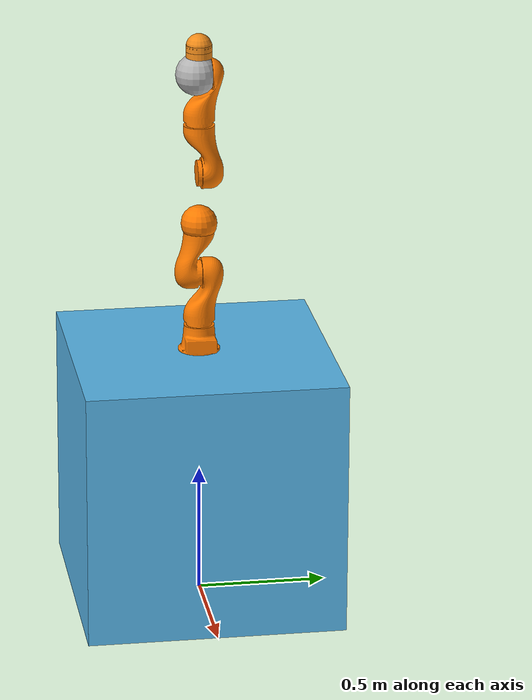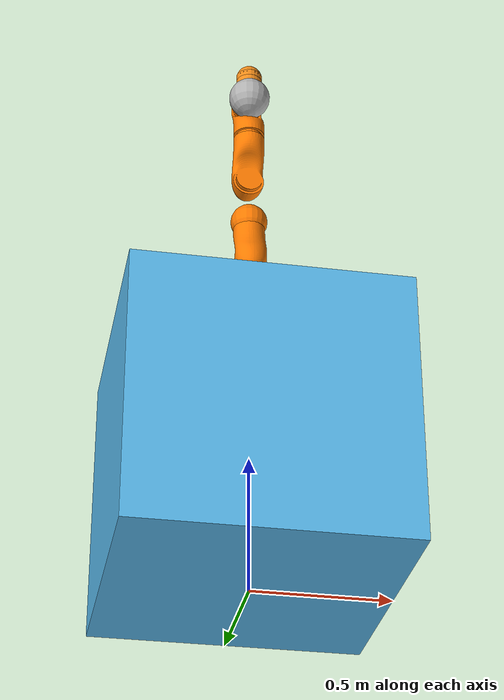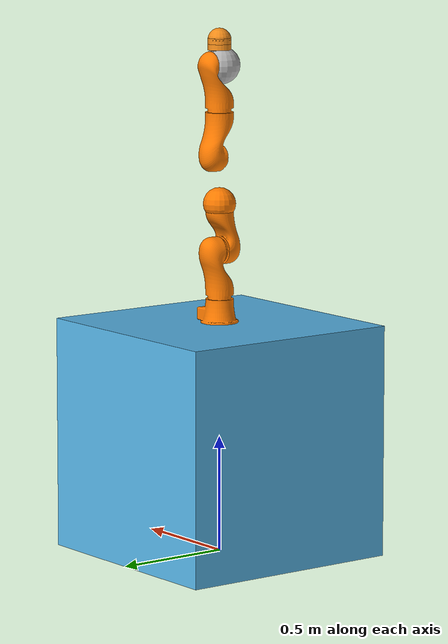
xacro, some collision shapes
<?xml version="1.0"?>
<robot xmlns:xacro="http://www.ros.org/wiki/xacro" name="single_lwr_robot">

	<!-- Include all models -->
	<xacro:include filename="$(find lwr_description)/model/kuka_lwr.urdf.xacro"/>
	<xacro:include filename="$(find end_effector)/urdf/end_effector.urdf.xacro" />
	<!-- and assemble your robot -->
	<link name="world"/>

	<joint name="fixed_w" type="fixed">
      <parent link="world"/>
      <child link="box"/>
    </joint>

	<link name="box">
		<inertial>
			<mass value="5.0"/>
			<origin rpy="0 0 0" xyz="0 0 0"/>
			<inertia ixx="0.01"
             iyy="0.01"
             izz="0.01"
             ixy="0" iyz="0" ixz="0"/>
		</inertial>
		<visual>
			<origin xyz="0 0 0.50" rpy="0 0 0"/>
			<geometry>
				<box size="1.0 1.0 1.0"/>
			</geometry>
		</visual>
		<collision>
			<origin xyz="0 0 0.50" rpy="0 0 0"/>
			<geometry>
				<box size="1.0 1.0 1.0"/>
			</geometry>
		</collision>
	</link>

>

	<!-- using the models -->
	<xacro:kuka_lwr parent="box" name="lwr">
		<origin xyz="0 0 1" rpy="0 0 0"/>
	</xacro:kuka_lwr>

	<xacro:end_effector_kuka_lwr parent="lwr_7_link" name="lwr">
		<origin xyz="0 0 0" rpy="0 0 0"/>
	</xacro:end_effector_kuka_lwr>

	<joint name="fixed_ef" type="fixed">
		<origin xyz="0 0 0.0875" rpy="0 0 0"/>
      <parent link="lwr_7_link"/>
      <child link="ef"/>
    </joint>

	<link name="ef">
		<inertial>
			<mass value="0.001"/>
			<origin rpy="0 0 0" xyz="0 0 0"/>
			<inertia ixx="0.001"
             iyy="0.001"
             izz="0.001"
             ixy="0" iyz="0" ixz="0"/>
		</inertial>
	</link>

</robot>

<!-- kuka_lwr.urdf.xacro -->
<robot name="kuka_lwr" xmlns:xacro="http://www.ros.org/wiki/xacro">

	<!-- utils /-->
	<xacro:include filename="$(find lwr_description)/model/utils.xacro"/>
	<xacro:include filename="$(find lwr_description)/model/kuka_materials.xacro"
	/>

	<!-- gazebo and transmission models /-->
	<xacro:include filename="$(find lwr_description)/model/kuka_lwr.gazebo.xacro"/>
	<xacro:include filename="$(find lwr_description)/model/kuka_lwr.transmission.xacro"/>

	<!-- properties /-->
	<xacro:property name="base_mass" value="2.0"/>
	<xacro:property name="link_mass" value="2.35"/>
    <xacro:property name="wrist_mass" value="1.1"/>
    <xacro:property name="tip_mass" value="0.25"/>
	<xacro:property name="velocity_scale" value="1"/>
	<xacro:property name="effort_scale" value="1"/>

	<xacro:property name="max_stiffness" value="5000"/>
	<xacro:property name="min_stiffness" value="0"/>
	<xacro:property name="rate_stiffness" value="20000"/> <!-- reflex to stiffness -->

	<!-- URDF model /-->
	<xacro:macro name="kuka_lwr" params="parent name *origin">

		<!-- First (shoulder) element of the arm. Fixed to its parent. -->
		<joint name="${parent}_${name}_base_joint" type="fixed">
			<xacro:insert_block name="origin"/>
			<origin xyz="0 0 0" rpy="0 0 0"/>
			<parent link="${parent}"/>
			<child link="${name}_base_link"/>
		</joint>

		<link name="${name}_base_link">
			<inertial>
				<mass value="${base_mass}"/>
				<origin xyz="0 0 0.055"  />
				<cylinder_inertia_def radius="0.06" length="0.11" mass="${base_mass}"/>
			</inertial>
			<visual>
				<origin xyz="0 0 0" rpy="0 0 ${M_PI}"/>
				<geometry>
					<mesh filename="package://lwr_description/meshes/lwr4plus/visual/base.STL"/>
				</geometry>
				<material name="Kuka/Orange"/>
			</visual>
			<collision>
				<origin xyz="0 0 0.055" rpy="0 0 ${M_PI}"/>
				<geometry>
					<cylinder radius="0.07" length="0.11"/>
				</geometry>
			</collision>
		</link>

		<!-- Second segment of the arm. Joint along z-axis -->
		<joint name="${name}_a1_joint" type="revolute">
			<origin xyz="0 0 0.11" rpy="0 0 0"/>
			<axis xyz="0 0 1"/>
			<limit lower="${-170 * M_PI / 180}" upper="${170 * M_PI / 180}" effort="176" velocity="${velocity_scale * 110 * M_PI / 180}" />
			<dynamics friction="10.0" damping="1.0"/>
			<parent link="${name}_base_link"/>
			<child link="${name}_1_link"/>
		</joint>

		<joint name="${name}_a1_joint_stiffness" type="revolute">
			<axis xyz="0 0 1"/>
			<limit lower="${min_stiffness}" upper="${max_stiffness}" effort="0" velocity="${rate_stiffness}" />
			<safety_controller soft_lower_limit="${min_stiffness}" soft_upper_limit="${max_stiffness}" k_position="30" k_velocity="30"/>
			<parent link="${name}_base_link"/>
			<child link="${name}_1_link_dummy"/>
		</joint>
		<link name="${name}_1_link_dummy"/>

		<link name="${name}_1_link">
			<inertial>
				<mass value="${link_mass}"/>
				<origin rpy="0 0 0" xyz="0 -0.06 0.130"/>
				<cuboid_inertia_def length="0.12" width="0.06" height="0.260" mass="${link_mass}"/>
			</inertial>
			<visual>
				<origin xyz="0 0 -0.008" rpy="0 0 ${M_PI}"/>
				<geometry>
					<mesh filename="package://lwr_description/meshes/lwr4plus/visual/link_1.STL"/>
				</geometry>
				<material name="Kuka/Orange"/>
			</visual>
			<collision>
				<origin xyz="0 0 0.0" rpy="0 0 0"/>
				<geometry>
					<sphere radius="0.07"/>
				</geometry>
			</collision>
			<collision>
				<origin xyz="0 0.06 0.2" rpy="0 0 0"/>
				<geometry>
					<sphere radius="0.07"/>
				</geometry>
			</collision>
			<collision>
				<origin xyz="0 0.03 0.1" rpy="-0.291 0 0"/>
				<geometry>
					<cylinder radius="0.07" length="0.208"/>
				</geometry>
			</collision>
		</link>

		<!-- Third segment of the arm. Joint along y-axis -->
		<joint name="${name}_a2_joint" type="revolute">
			<origin xyz="0 0 0.2005" rpy="0 0 0"/>
			<axis xyz="0 -1 0"/>
			<limit lower="${-120 * M_PI / 180}" upper="${120 * M_PI / 180}" effort="176" velocity="${velocity_scale * 110 * M_PI / 180}" />
			<dynamics friction="10.0" damping="1.0"/>
			<parent link="${name}_1_link"/>
			<child link="${name}_2_link"/>
		</joint>

		<joint name="${name}_a2_joint_stiffness" type="revolute">
			<axis xyz="0 0 1"/>
			<limit lower="${min_stiffness}" upper="${max_stiffness}" effort="0" velocity="${rate_stiffness}" />
			<safety_controller soft_lower_limit="${min_stiffness}" soft_upper_limit="${max_stiffness}" k_position="30" k_velocity="30"/>
			<parent link="${name}_1_link"/>
			<child link="${name}_2_link_dummy"/>
		</joint>
		<link name="${name}_2_link_dummy"/>

		<link name="${name}_2_link">
			<inertial>
				<mass value="${link_mass}"/>
				<origin rpy="0 0 0" xyz="0 0.06 ${0.130 - 0.06}"/>
				<cuboid_inertia_def length="0.12" width="0.06" height="0.260" mass="${link_mass}"/>
			</inertial>

			<visual>
				<origin xyz="0 0 0.0" rpy="0 0 ${M_PI}"/>
				<geometry>
					<mesh filename="package://lwr_description/meshes/lwr4plus/visual/link_2.STL"/>
				</geometry>
				<material name="Kuka/Orange"/>
			</visual>
			<collision>
				<origin xyz="0 0 0.2" rpy="0 0 0"/>
				<geometry>
					<sphere radius="0.07"/>
				</geometry>
			</collision>
			<collision>
				<origin xyz="0 -0.06 0.0" rpy="0 0 0"/>
				<geometry>
					<sphere radius="0.07"/>
				</geometry>
			</collision>
			<collision>
				<origin xyz="0 -0.03 0.1" rpy="-0.291 0 0"/>
				<geometry>
					<cylinder radius="0.07" length="0.208"/>
				</geometry>
			</collision>
		</link>

		<!-- Fourth element of the arm. z-axis -->
		<joint name="${name}_e1_joint" type="revolute">
			<origin xyz="0 0 0.20" rpy="0 0 0"/>
			<axis xyz="0 0 1"/>
			<limit lower="${-170 * M_PI / 180}" upper="${170 * M_PI / 180}" effort="100" velocity="${velocity_scale * 128 * M_PI / 180}" />
			<dynamics friction="10.0" damping="1.0"/>
			<parent link="${name}_2_link"/>
			<child link="${name}_3_link"/>
		</joint>

		<joint name="${name}_e1_joint_stiffness" type="revolute">
			<axis xyz="0 0 1"/>
			<limit lower="${min_stiffness}" upper="${max_stiffness}" effort="0" velocity="${rate_stiffness}" />
			<safety_controller soft_lower_limit="${min_stiffness}" soft_upper_limit="${max_stiffness}" k_position="30" k_velocity="30"/>
			<parent link="${name}_2_link"/>
			<child link="${name}_3_link_dummy"/>
		</joint>
		<link name="${name}_3_link_dummy"/>

		<link name="${name}_3_link">
			<inertial>
				<mass value="${link_mass}"/>
				<origin rpy="0 0 0" xyz="0 0.06 0.130"/>
				<cuboid_inertia_def length="0.12" width="0.06" height="0.260" mass="${link_mass}"/>
			</inertial>

			<visual>
				<origin xyz="0 0 -0.008" rpy="0 0 ${M_PI}"/>
				<geometry>
					<mesh filename="package://lwr_description/meshes/lwr4plus/visual/link_3.STL"/>
				</geometry>
				<material name="Kuka/Orange"/>
			</visual>
			<collision>
				<origin xyz="0 0 0.0" rpy="0 0 0"/>
				<geometry>
					<sphere radius="0.07"/>
				</geometry>
			</collision>
			<collision>
				<origin xyz="0 -0.06 0.2" rpy="0 0 0"/>
				<geometry>
					<sphere radius="0.07"/>
				</geometry>
			</collision>
			<collision>
				<origin xyz="0 -0.03 0.1" rpy="0.291 0 0"/>
				<geometry>
					<cylinder radius="0.07" length="0.208"/>
				</geometry>
			</collision>
		</link>

		<!-- fifth element of the arm. x-axis -->
		<joint name="${name}_a3_joint" type="revolute">
			<origin xyz="0 0 0.20" rpy="0 0 0"/>
			<axis xyz="0 1 0"/>
			<limit lower="${-120 * M_PI / 180}" upper="${120 * M_PI / 180}" effort="100" velocity="${velocity_scale * 128 * M_PI / 180}" />
			<dynamics friction="10.0" damping="1.0"/>
			<parent link="${name}_3_link"/>
			<child link="${name}_4_link"/>
		</joint>

		<joint name="${name}_a3_joint_stiffness" type="revolute">
			<axis xyz="0 0 1"/>
			<limit lower="${min_stiffness}" upper="${max_stiffness}" effort="0" velocity="${rate_stiffness}" />
			<safety_controller soft_lower_limit="${min_stiffness}" soft_upper_limit="${max_stiffness}" k_position="30" k_velocity="30"/>
			<parent link="${name}_3_link"/>
			<child link="${name}_4_link_dummy"/>
		</joint>
		<link name="${name}_4_link_dummy"/>

		<link name="${name}_4_link">
			<inertial>
				<mass value="${link_mass}"/>
				<origin rpy="0 0 0" xyz="0 -0.06 ${0.130 - 0.06}"/>
				<cuboid_inertia_def length="0.12" width="0.06" height="0.2600" mass="${link_mass}"/>
			</inertial>

			<visual>
				<origin xyz="0 0 0.0" rpy="0 0 ${M_PI}"/>
				<geometry>
					<mesh filename="package://lwr_description/meshes/lwr4plus/visual/link_4.STL"/>
				</geometry>
				<material name="Kuka/Orange"/>
			</visual>
			<collision>
			<origin xyz="0 0 0.2" rpy="0 0 0"/>
			<geometry>
				<sphere radius="0.07"/>
			</geometry>
			</collision>
			<collision>
				<origin xyz="0 0.06 0.0" rpy="0 0 0"/>
				<geometry>
					<sphere radius="0.07"/>
				</geometry>
			</collision>
			<collision>
				<origin xyz="0 0.03 0.1" rpy="0.291 0 0"/>
				<geometry>
					<cylinder radius="0.07" length="0.208"/>
				</geometry>
			</collision>
		</link>

		<!-- Sixth element of the arm. z-axis -->
		<joint name="${name}_a4_joint" type="revolute">
			<origin xyz="0 0 0.20" rpy="0 0 0"/>
			<axis xyz="0 0 1"/>
			<limit lower="${-170 * M_PI / 180}" upper="${170 * M_PI / 180}" effort="100" velocity="${velocity_scale * 204 * M_PI / 180}" />
			<dynamics friction="10.0" damping="1.0"/>
			<parent link="${name}_4_link"/>
			<child link="${name}_5_link"/>
		</joint>

		<joint name="${name}_a4_joint_stiffness" type="revolute">
			<axis xyz="0 0 1"/>
			<limit lower="${min_stiffness}" upper="${max_stiffness}" effort="0" velocity="${rate_stiffness}" />
			<safety_controller soft_lower_limit="${min_stiffness}" soft_upper_limit="${max_stiffness}" k_position="30" k_velocity="30"/>
			<parent link="${name}_4_link"/>
			<child link="${name}_5_link_dummy"/>
		</joint>
		<link name="${name}_5_link_dummy"/>

		<link name="${name}_5_link">
			<inertial>
				<mass value="${link_mass}"/>
				<origin rpy="0 0 0" xyz="0 0 0.124"/>
				<cuboid_inertia_def length="0.12" width="0.06" height="0.248" mass="${link_mass}"/>
			</inertial>

			<visual>
				<origin xyz="0 0 -0.008" rpy="0 0 ${M_PI}"/>
				<geometry name="${name}_5_geom">
					<mesh filename="package://lwr_description/meshes/lwr4plus/visual/link_5.STL"/>
				</geometry>
				<material name="Kuka/Orange"/>
			</visual>

			<collision>
				<origin xyz="0 0 0.0" rpy="0 0 0"/>
				<geometry>
					<sphere radius="0.07"/>
				</geometry>
			</collision>
			<collision>
				<origin xyz="0 0.04 0.19" rpy="0 0 0"/>
				<geometry>
					<sphere radius="0.07"/>
				</geometry>
			</collision>
			<collision>
				<origin xyz="0 0.02 0.095" rpy="-0.207 0 0"/>
				<geometry>
					<cylinder radius="0.07" length="0.198"/>
				</geometry>
			</collision>
		</link>

		<!-- Seventh element of the arm. z-axis -->
		<joint name="${name}_a5_joint" type="revolute">
			<origin xyz="0 0 0.19" rpy="0 0 0"/>
			<axis xyz="0 -1 0"/>
			<limit lower="${-120 * M_PI / 180}" upper="${120 * M_PI / 180}" effort="38" velocity="${velocity_scale * 184 * M_PI / 180}" />
			<dynamics friction="10.0" damping="1.0"/>
			<parent link="${name}_5_link"/>
			<child link="${name}_6_link"/>
		</joint>

		<joint name="${name}_a5_joint_stiffness" type="revolute">
			<axis xyz="0 0 1"/>
			<limit lower="${min_stiffness}" upper="${max_stiffness}" effort="0" velocity="${rate_stiffness}" />
			<safety_controller soft_lower_limit="${min_stiffness}" soft_upper_limit="${max_stiffness}" k_position="30" k_velocity="30"/>
			<parent link="${name}_5_link"/>
			<child link="${name}_6_link_dummy"/>
		</joint>
		<link name="${name}_6_link_dummy"/>

		<link name="${name}_6_link">
			<inertial>
				<mass value="${wrist_mass}"/>
				<origin rpy="0 0 0" xyz="0 0 0.0625"/>
				<cuboid_inertia_def length="0.125" width="0.125" height="0.125" mass="${wrist_mass}"/>
			</inertial>

			<visual>
				<origin xyz="0 0 0" rpy="0 0 ${M_PI}"/>
				<geometry>
					<mesh filename="package://lwr_description/meshes/lwr4plus/visual/link_6.STL"/>
				</geometry>
			<material name="Kuka/Grey"/>
			</visual>
			<collision>
			<origin xyz="0 -0.01 0" rpy="0 0 ${M_PI}"/>
			<geometry>
				<sphere radius="0.08"/>
			</geometry>
			</collision>
		</link>

		<!-- Eighth element of the arm. z-axis -->
		<joint name="${name}_a6_joint" type="revolute">
			<origin xyz="0 0 0.078" rpy="0 0 0"/>
			<axis xyz="0 0 1"/>
			<limit lower="${-170 * M_PI / 180}" upper="${170 * M_PI / 180}" effort="38" velocity="${velocity_scale * 184 * M_PI / 180}" />
			<dynamics friction="10.0" damping="1.0"/>
			<parent link="${name}_6_link"/>
			<child link="${name}_7_link"/>
		</joint>

		<joint name="${name}_a6_joint_stiffness" type="revolute">
			<axis xyz="0 0 1"/>
			<limit lower="${min_stiffness}" upper="${max_stiffness}" effort="0" velocity="${rate_stiffness}" />
			<safety_controller soft_lower_limit="${min_stiffness}" soft_upper_limit="${max_stiffness}" k_position="30" k_velocity="30"/>
			<parent link="${name}_6_link"/>
			<child link="${name}_7_link_dummy"/>
		</joint>
		<link name="${name}_7_link_dummy"/>

		<link name="${name}_7_link">
			<inertial>
				<mass value="${tip_mass}"/>
				<origin xyz="0 0 0"/>
				<cuboid_inertia_def length="0.1" width="0.1" height="0.1" mass="${tip_mass}"/>
			</inertial>
			<visual>
				<origin xyz="0 0 0" rpy="0 0 ${M_PI}"/>
				<geometry>
					<mesh filename="package://lwr_description/meshes/lwr4plus/visual/link_7.STL"/>
				</geometry>
			<material name="Kuka/DarkGrey"/>
			</visual>

			<collision>
			<origin xyz="0 0 0" rpy="0 0 ${M_PI}"/>
			<geometry>
				<cylinder radius="0.04" length="0.05"/>
			</geometry>
			</collision>
		</link>

		<xacro:kuka_lwr_gazebo name="${name}"/>
		<xacro:kuka_lwr_transmission name="${name}"/>

	</xacro:macro>

</robot>

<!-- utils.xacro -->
<robot xmlns:xacro="http://www.ros.org/wiki/xacro">

  <xacro:property name="M_PI" value="3.1415926535897931"/>

  <!-- Little helper macro to define the inertia matrix needed for links. -->
  <xacro:macro name="cuboid_inertia_def" params="width height length mass">
    <inertia ixx="${mass * (height * height + length * length) / 12}"
             iyy="${mass * (width * width + length * length) / 12}"
             izz="${mass * (width * width + height * height) / 12}"
             ixy="0" iyz="0" ixz="0"/>
  </xacro:macro>

  <!-- length is along the y-axis! -->
  <xacro:macro name="cylinder_inertia_def" params="radius length mass">
    <inertia ixx="${mass * (3 * radius * radius + length * length) / 12}"
             iyy="${mass * radius* radius / 2}"
             izz="${mass * (3 * radius * radius + length * length) / 12}"
             ixy="0" iyz="0" ixz="0"/>
  </xacro:macro>

</robot>

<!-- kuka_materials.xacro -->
<robot xmlns:xacro="http://www.ros.org/wiki/xacro">
  <material name="Kuka/DarkGrey">
    <color rgba="0.3 0.3 0.3 1.0"/>
  </material>

  <material name="Kuka/LightGrey">
    <color rgba="0.8 0.8 0.8 1.0"/>
  </material>

  <material name="Kuka/Red">
    <color rgba="0.3 0.3 0.3 1.0"/>
  </material>

  <material name="Kuka/Black">
    <color rgba="0 0 0 1.0"/>
  </material>

  <material name="Kuka/Orange">
    <color rgba="1.0 0.487 0 1.0"/>
  </material>

  <material name="Kuka/Silver">
    <color rgba="1.0 1.0 1.0 1.0"/>
  </material>

  <material name="Kuka/Grey">
    <color rgba="0.7 0.7 0.7 1.0"/>
  </material>

  <material name="Kuka/Blue">
    <color rgba="0.0 0.0 0.8 1.0"/>
  </material>

</robot>

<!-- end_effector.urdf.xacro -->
<robot xmlns:xacro="http://www.ros.org/wiki/xacro" name="end_effector">

  <!-- Constants for robot dimensions -->
  <xacro:property name="PI" value="3.1415926535897931"/>
  <xacro:property name="mass" value="0.001" /> <!-- arbitrary value for mass -->
  <xacro:property name="width" value="0.25" />
  <xacro:property name="height" value="0.5" />
  <xacro:property name="length" value="0.025" />
  <xacro:property name="radius" value="0.05" />
  <!-- Import all Gazebo-customization elements, including Gazebo colors -->
  <xacro:include filename="$(find end_effector)/urdf/end_effector.gazebo" />

  <xacro:macro name="end_effector_kuka_lwr" params="parent name *origin">

    <joint name="fixed" type="fixed">
      <parent link="${parent}"/>
      <child link="link_cubo1"/>
      <xacro:insert_block name="origin"/>
    </joint>

    <link name="link_cubo1">
      <collision>
      <origin xyz="0 0 0" rpy="0 0 0"/>
      <geometry>
        <cylinder radius="${radius}" length="${length}"/>
      </geometry>
      </collision>

      <visual>
        <origin xyz="0 0 0" rpy="0 0 0"/>
        <geometry>
          <cylinder radius="${radius}" length="${length}"/>
        </geometry>
        <material name="orange"/>
      </visual>

      <inertial>
        <mass value="${mass}"/>
        <origin xyz="0 0 0"  />
        <cylinder_inertia_def radius="0.05" length="0.025" mass="${mass}"/>
      </inertial>

    </link>

    <joint name="joint1" type="fixed">
      <parent link="link_cubo1"/>
      <child link="link_cubo2"/>
      <origin xyz="0 0 0.025" rpy="0 0 0"/>
    </joint>

    <link name="link_cubo2">
      <collision>
        <origin xyz="0 0 0" rpy="0 0 0"/>
        <geometry>
          <cylinder radius="${radius}" length="${length}"/>
        </geometry>
      </collision>

      <visual>
        <origin xyz="0 0 0" rpy="0 0 0"/>
        <geometry>
          <cylinder radius="${radius}" length="${length}"/>
        </geometry>
        <material name="orange"/>
      </visual>

      <inertial>
        <mass value="${mass}"/>
        <origin xyz="0 0 0"  />
        <cylinder_inertia_def radius="0.05" length="0.025" mass="${mass}"/>
      </inertial>
    </link>

    <joint name="fixed2" type="fixed">
      <parent link="link_cubo2"/>
      <child link="link_sfera"/>
    </joint>

    <link name="link_sfera">
      <collision>
        <origin xyz="0 0 0.005" rpy="0 0 0"/>
        <geometry>
          <sphere radius="${radius}"/>
        </geometry>
      </collision>

      <visual>
        <origin xyz="0 0 0.005" rpy="0 0 0"/>
        <geometry>
          <sphere radius="${radius}"/>
        </geometry>
      </visual>
    </link>

  </xacro:macro>

  <xacro:kuka_lwr_gazebo_ft_sensor name="lwr"/>

</robot>
